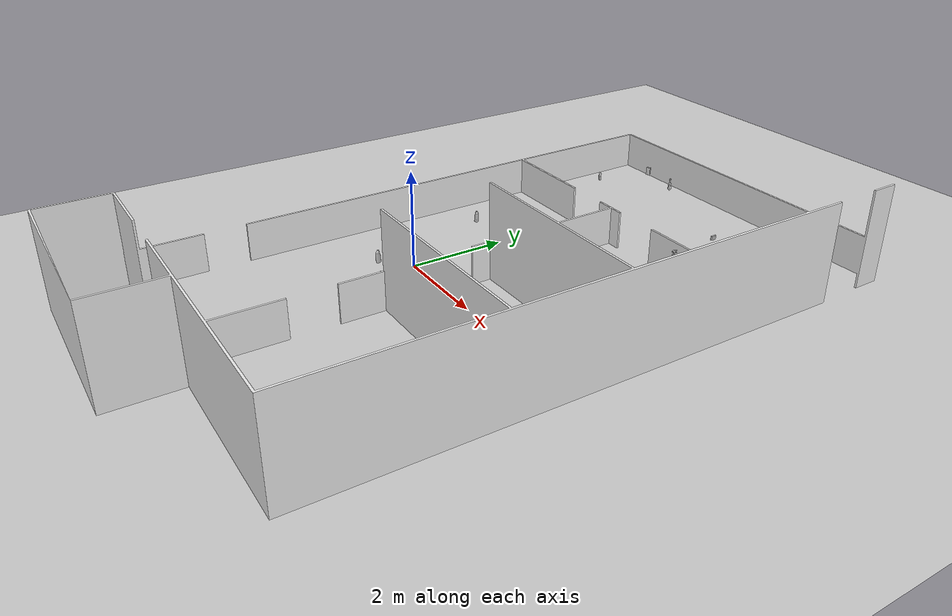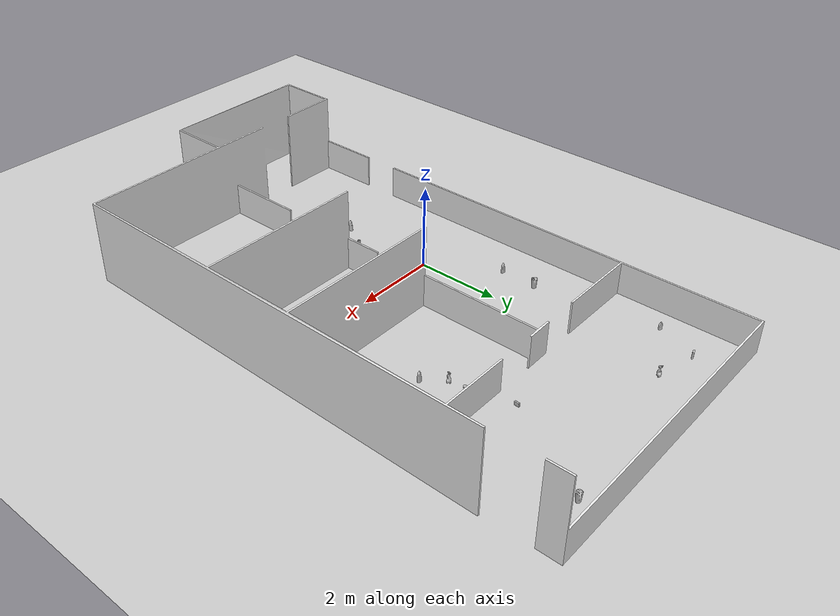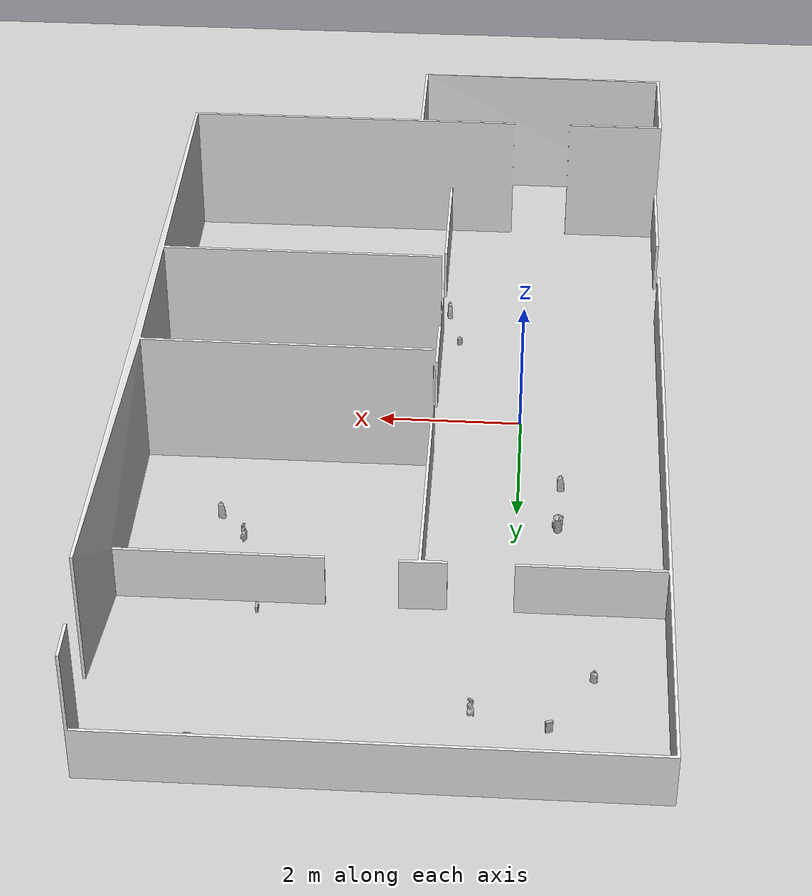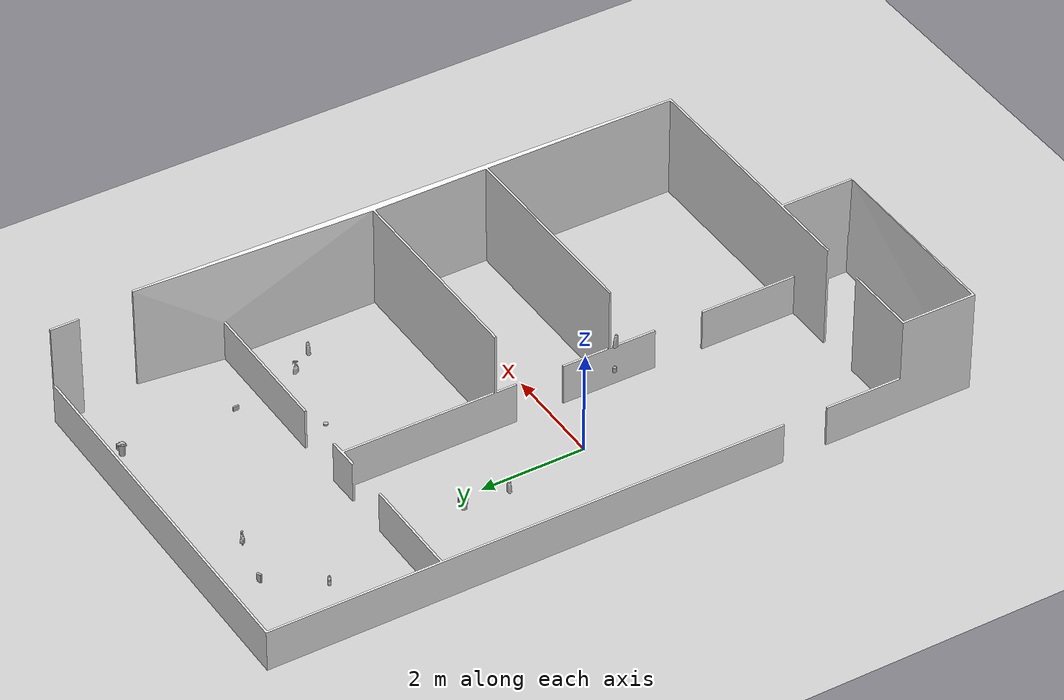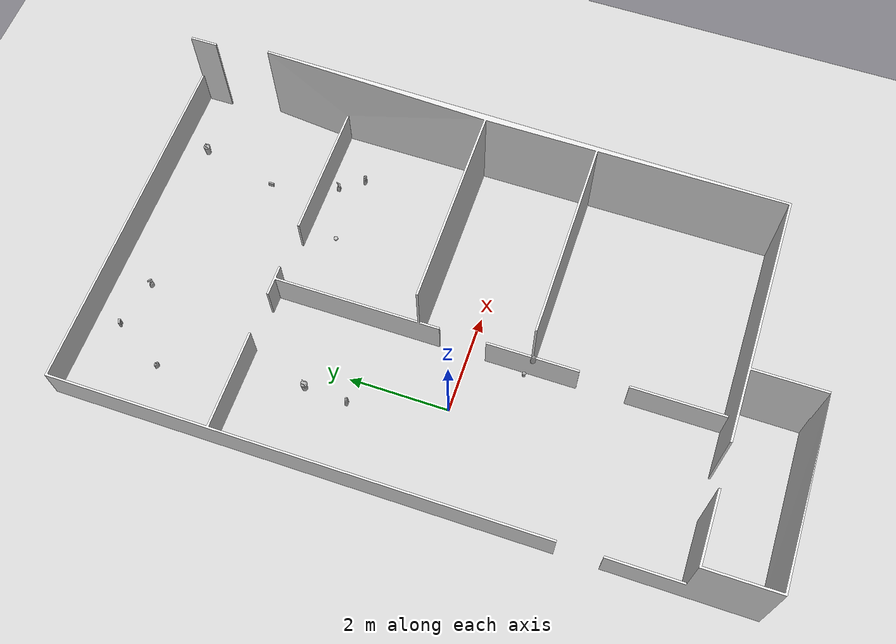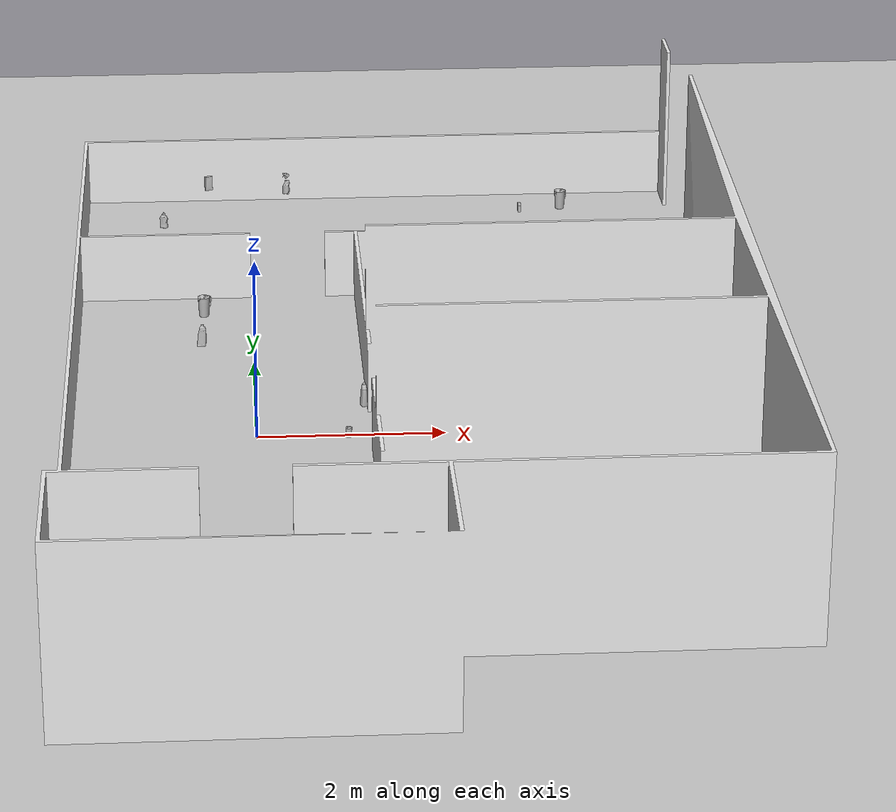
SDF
<sdf version="1.6">
 <world name="robocup">
  <physics name="default_physics" default="0" type="ode">
   <ode>
    <solver>
     <type>quick</type>
     <iters>20</iters>
     <sor>1</sor>
     <use_dynamic_moi_rescaling>0</use_dynamic_moi_rescaling>
    </solver>
    <constraints>
     <cfm>0</cfm>
     <erp>0.2</erp>
     <contact_max_correcting_vel>100</contact_max_correcting_vel>
     <contact_surface_layer>0</contact_surface_layer>
    </constraints>
   </ode>
   <real_time_update_rate>1000</real_time_update_rate>
   <max_step_size>0.001</max_step_size>
   <real_time_factor>1</real_time_factor>
  </physics>
  <light name="sun" type="directional">
   <pose>0 0 10 0 -0 0</pose>
   <diffuse>0.8 0.8 0.8 1</diffuse>
   <specular>0.1 0.1 0.1 1</specular>
   <attenuation>
    <range>1000</range>
    <constant>0.9</constant>
    <linear>0.01</linear>
    <quadratic>0.001</quadratic>
   </attenuation>
   <direction>-0.5 0.5 -1</direction>
  </light>
  <model name="ground_plane">
   <static>1</static>
   <link name="link">
    <collision name="collision">
     <geometry><plane><normal>0 0 1</normal><size>100 100</size></plane></geometry>
     <surface><friction><ode><mu>100</mu><mu2>50</mu2></ode></friction></surface>
    </collision>
    <visual name="visual">
     <cast_shadows>0</cast_shadows>
     <geometry><plane><normal>0 0 1</normal><size>100 100</size></plane></geometry>
     <material>
      <script><uri>file://media/materials/scripts/gazebo.material</uri><name>Gazebo/Grey</name></script>
     </material>
    </visual>
   </link>
  </model>
  <model name="housewalls1">
   <static>1</static>
   <link name="link">
    <collision name="colision1">
     <geometry>
      <mesh>
       <uri>model://robocup_walls_70cm_doors/meshes/robocup_house_large_doors_sas.stl</uri>
       <scale>1 1 1</scale>
      </mesh>
     </geometry>
    </collision>
    <visual name="visual1">
     <geometry>
      <mesh>
       <uri>model://robocup_walls_70cm_doors/meshes/robocup_house_large_doors_sas.stl</uri>
       <scale>1 1 1</scale>
      </mesh>
     </geometry>
     <material>
      <script><uri>file://media/materials/scripts/gazebo.material</uri><name>Gazebo/White</name></script>
     </material>
    </visual>
    <velocity_decay><linear>0</linear><angular>0</angular></velocity_decay>
   </link>
   <pose>-2 -5 0 0 -0 0</pose>
  </model>
  <model name="ycb-bleach">
   <link name="link_8">
    <inertial>
     <mass>1</mass>
     <inertia>
      <ixx>0.166667</ixx>
      <ixy>0</ixy>
      <ixz>0</ixz>
      <iyy>0.166667</iyy>
      <iyz>0</iyz>
      <izz>0.166667</izz>
     </inertia>
    </inertial>
    <visual name="visual">
     <geometry><mesh><uri>model://ycb-bleach/meshes/textured.dae</uri><scale>1 1 1</scale></mesh></geometry>
    </visual>
    <collision name="collision">
     <geometry><mesh><uri>/model://ycb-bleach/meshes/textured.dae</uri><scale>1 1 1</scale></mesh></geometry>
     <surface>
      <friction>
       <ode><mu>1</mu><mu2>1</mu2><fdir1>0 0 0</fdir1><slip1>0</slip1><slip2>0</slip2></ode>
       <torsional>
        <coefficient>1</coefficient>
        <patch_radius>0</patch_radius>
        <surface_radius>0</surface_radius>
        <use_patch_radius>1</use_patch_radius>
        <ode><slip>0</slip></ode>
       </torsional>
      </friction>
      <bounce><restitution_coefficient>0</restitution_coefficient><threshold>1e+06</threshold></bounce>
      <contact>
       <collide_without_contact>0</collide_without_contact>
       <collide_without_contact_bitmask>1</collide_without_contact_bitmask>
       <collide_bitmask>1</collide_bitmask>
       <ode>
        <soft_cfm>0</soft_cfm>
        <soft_erp>0.2</soft_erp>
        <kp>1e+13</kp>
        <kd>1</kd>
        <max_vel>0.01</max_vel>
        <min_depth>0</min_depth>
       </ode>
       <bullet>
        <split_impulse>1</split_impulse>
        <split_impulse_penetration_threshold>-0.01</split_impulse_penetration_threshold>
        <soft_cfm>0</soft_cfm>
        <soft_erp>0.2</soft_erp>
        <kp>1e+13</kp>
        <kd>1</kd>
       </bullet>
      </contact>
     </surface>
    </collision>
   </link>
   <static>1</static>
   <pose>3.88496 3.06068 0.660997 0 -0 0</pose>
  </model>
  <model name="ycb-mustard">
   <link name="link_2">
    <inertial>
     <mass>1</mass>
     <inertia>
      <ixx>0.166667</ixx>
      <ixy>0</ixy>
      <ixz>0</ixz>
      <iyy>0.166667</iyy>
      <iyz>0</iyz>
      <izz>0.166667</izz>
     </inertia>
    </inertial>
    <visual name="visual">
     <geometry><mesh><uri>model://ycb-mustard/meshes/textured.dae</uri><scale>1 1 1</scale></mesh></geometry>
    </visual>
    <collision name="collision">
     <geometry><mesh><uri>model://ycb-mustard/meshes/textured.dae</uri><scale>1 1 1</scale></mesh></geometry>
     <surface>
      <friction>
       <ode><mu>1</mu><mu2>1</mu2><fdir1>0 0 0</fdir1><slip1>0</slip1><slip2>0</slip2></ode>
       <torsional>
        <coefficient>1</coefficient>
        <patch_radius>0</patch_radius>
        <surface_radius>0</surface_radius>
        <use_patch_radius>1</use_patch_radius>
        <ode><slip>0</slip></ode>
       </torsional>
      </friction>
      <bounce><restitution_coefficient>0</restitution_coefficient><threshold>1e+06</threshold></bounce>
      <contact>
       <collide_without_contact>0</collide_without_contact>
       <collide_without_contact_bitmask>1</collide_without_contact_bitmask>
       <collide_bitmask>1</collide_bitmask>
       <ode>
        <soft_cfm>0</soft_cfm>
        <soft_erp>0.2</soft_erp>
        <kp>1e+13</kp>
        <kd>1</kd>
        <max_vel>0.01</max_vel>
        <min_depth>0</min_depth>
       </ode>
       <bullet>
        <split_impulse>1</split_impulse>
        <split_impulse_penetration_threshold>-0.01</split_impulse_penetration_threshold>
        <soft_cfm>0</soft_cfm>
        <soft_erp>0.2</soft_erp>
        <kp>1e+13</kp>
        <kd>1</kd>
       </bullet>
      </contact>
     </surface>
    </collision>
   </link>
   <static>1</static>
   <pose>-1.00422 5.50495 0.30154 0 -0 0</pose>
  </model>
  <model name="ycb-windex">
   <link name="link_9">
    <inertial>
     <mass>1</mass>
     <inertia>
      <ixx>0.166667</ixx>
      <ixy>0</ixy>
      <ixz>0</ixz>
      <iyy>0.166667</iyy>
      <iyz>0</iyz>
      <izz>0.166667</izz>
     </inertia>
    </inertial>
    <visual name="visual">
     <geometry><mesh><uri>model://ycb-windex/meshes/textured.dae</uri><scale>1 1 1</scale></mesh></geometry>
    </visual>
    <collision name="collision">
     <geometry><mesh><uri>model://ycb-windex/meshes/textured.dae</uri><scale>1 1 1</scale></mesh></geometry>
     <surface>
      <friction>
       <ode><mu>1</mu><mu2>1</mu2><fdir1>0 0 0</fdir1><slip1>0</slip1><slip2>0</slip2></ode>
       <torsional>
        <coefficient>1</coefficient>
        <patch_radius>0</patch_radius>
        <surface_radius>0</surface_radius>
        <use_patch_radius>1</use_patch_radius>
        <ode><slip>0</slip></ode>
       </torsional>
      </friction>
      <bounce><restitution_coefficient>0</restitution_coefficient><threshold>1e+06</threshold></bounce>
      <contact>
       <collide_without_contact>0</collide_without_contact>
       <collide_without_contact_bitmask>1</collide_without_contact_bitmask>
       <collide_bitmask>1</collide_bitmask>
       <ode>
        <soft_cfm>0</soft_cfm>
        <soft_erp>0.2</soft_erp>
        <kp>1e+13</kp>
        <kd>1</kd>
        <max_vel>0.01</max_vel>
        <min_depth>0</min_depth>
       </ode>
       <bullet>
        <split_impulse>1</split_impulse>
        <split_impulse_penetration_threshold>-0.01</split_impulse_penetration_threshold>
        <soft_cfm>0</soft_cfm>
        <soft_erp>0.2</soft_erp>
        <kp>1e+13</kp>
        <kd>1</kd>
       </bullet>
      </contact>
     </surface>
    </collision>
   </link>
   <static>1</static>
   <pose>3.51273 3.49556 0.656992 0 -0 0</pose>
  </model>
  <gravity>0 0 -9.81</gravity>
  <magnetic_field>6e-06 2.3e-05 -4.2e-05</magnetic_field>
  <atmosphere type="adiabatic"/>
  <scene><ambient>0.4 0.4 0.4 1</ambient><background>0.7 0.7 0.7 1</background><shadows>1</shadows></scene>
  <spherical_coordinates>
   <surface_model>EARTH_WGS84</surface_model>
   <latitude_deg>0</latitude_deg>
   <longitude_deg>0</longitude_deg>
   <elevation>0</elevation>
   <heading_deg>0</heading_deg>
  </spherical_coordinates>
  <model name="ycb-bleach_clone">
   <link name="link_8">
    <inertial>
     <mass>1</mass>
     <inertia>
      <ixx>0.166667</ixx>
      <ixy>0</ixy>
      <ixz>0</ixz>
      <iyy>0.166667</iyy>
      <iyz>0</iyz>
      <izz>0.166667</izz>
     </inertia>
    </inertial>
    <visual name="visual">
     <geometry><mesh><uri>model://ycb-bleach/meshes/textured.dae</uri><scale>1 1 1</scale></mesh></geometry>
    </visual>
    <collision name="collision">
     <geometry><mesh><uri>/model://ycb-bleach/meshes/textured.dae</uri><scale>1 1 1</scale></mesh></geometry>
     <surface>
      <friction>
       <ode><mu>1</mu><mu2>1</mu2><fdir1>0 0 0</fdir1><slip1>0</slip1><slip2>0</slip2></ode>
       <torsional>
        <coefficient>1</coefficient>
        <patch_radius>0</patch_radius>
        <surface_radius>0</surface_radius>
        <use_patch_radius>1</use_patch_radius>
        <ode><slip>0</slip></ode>
       </torsional>
      </friction>
      <bounce><restitution_coefficient>0</restitution_coefficient><threshold>1e+06</threshold></bounce>
      <contact>
       <collide_without_contact>0</collide_without_contact>
       <collide_without_contact_bitmask>1</collide_without_contact_bitmask>
       <collide_bitmask>1</collide_bitmask>
       <ode>
        <soft_cfm>0</soft_cfm>
        <soft_erp>0.2</soft_erp>
        <kp>1e+13</kp>
        <kd>1</kd>
        <max_vel>0.01</max_vel>
        <min_depth>0</min_depth>
       </ode>
       <bullet>
        <split_impulse>1</split_impulse>
        <split_impulse_penetration_threshold>-0.01</split_impulse_penetration_threshold>
        <soft_cfm>0</soft_cfm>
        <soft_erp>0.2</soft_erp>
        <kp>1e+13</kp>
        <kd>1</kd>
       </bullet>
      </contact>
     </surface>
    </collision>
   </link>
   <static>1</static>
   <pose>1.06873 -1.30415 0.919867 0 0 -1.27968</pose>
  </model>
  <model name="ycb-bleach_clone_0">
   <link name="link_8">
    <inertial>
     <mass>1</mass>
     <inertia>
      <ixx>0.166667</ixx>
      <ixy>0</ixy>
      <ixz>0</ixz>
      <iyy>0.166667</iyy>
      <iyz>0</iyz>
      <izz>0.166667</izz>
     </inertia>
    </inertial>
    <visual name="visual">
     <geometry><mesh><uri>model://ycb-bleach/meshes/textured.dae</uri><scale>1 1 1</scale></mesh></geometry>
    </visual>
    <collision name="collision">
     <geometry><mesh><uri>/model://ycb-bleach/meshes/textured.dae</uri><scale>1 1 1</scale></mesh></geometry>
     <surface>
      <friction>
       <ode><mu>1</mu><mu2>1</mu2><fdir1>0 0 0</fdir1><slip1>0</slip1><slip2>0</slip2></ode>
       <torsional>
        <coefficient>1</coefficient>
        <patch_radius>0</patch_radius>
        <surface_radius>0</surface_radius>
        <use_patch_radius>1</use_patch_radius>
        <ode><slip>0</slip></ode>
       </torsional>
      </friction>
      <bounce><restitution_coefficient>0</restitution_coefficient><threshold>1e+06</threshold></bounce>
      <contact>
       <collide_without_contact>0</collide_without_contact>
       <collide_without_contact_bitmask>1</collide_without_contact_bitmask>
       <collide_bitmask>1</collide_bitmask>
       <ode>
        <soft_cfm>0</soft_cfm>
        <soft_erp>0.2</soft_erp>
        <kp>1e+13</kp>
        <kd>1</kd>
        <max_vel>0.01</max_vel>
        <min_depth>0</min_depth>
       </ode>
       <bullet>
        <split_impulse>1</split_impulse>
        <split_impulse_penetration_threshold>-0.01</split_impulse_penetration_threshold>
        <soft_cfm>0</soft_cfm>
        <soft_erp>0.2</soft_erp>
        <kp>1e+13</kp>
        <kd>1</kd>
       </bullet>
      </contact>
     </surface>
    </collision>
   </link>
   <static>1</static>
   <pose>-0.555923 1.80067 0.304285 0 -0 0</pose>
  </model>
  <model name="ycb-pudding">
   <link name="link_4">
    <inertial>
     <mass>1</mass>
     <inertia>
      <ixx>0.166667</ixx>
      <ixy>0</ixy>
      <ixz>0</ixz>
      <iyy>0.166667</iyy>
      <iyz>0</iyz>
      <izz>0.166667</izz>
     </inertia>
    </inertial>
    <visual name="visual">
     <geometry><mesh><uri>model://ycb-pudding/meshes/textured.dae</uri><scale>1 1 1</scale></mesh></geometry>
    </visual>
    <collision name="collision">
     <geometry><mesh><uri>model://ycb-pudding/meshes/textured.dae</uri><scale>1 1 1</scale></mesh></geometry>
     <surface>
      <friction>
       <ode><mu>1</mu><mu2>1</mu2><fdir1>0 0 0</fdir1><slip1>0</slip1><slip2>0</slip2></ode>
       <torsional>
        <coefficient>1</coefficient>
        <patch_radius>0</patch_radius>
        <surface_radius>0</surface_radius>
        <use_patch_radius>1</use_patch_radius>
        <ode><slip>0</slip></ode>
       </torsional>
      </friction>
      <bounce><restitution_coefficient>0</restitution_coefficient><threshold>1e+06</threshold></bounce>
      <contact>
       <collide_without_contact>0</collide_without_contact>
       <collide_without_contact_bitmask>1</collide_without_contact_bitmask>
       <collide_bitmask>1</collide_bitmask>
       <ode>
        <soft_cfm>0</soft_cfm>
        <soft_erp>0.2</soft_erp>
        <kp>1e+13</kp>
        <kd>1</kd>
        <max_vel>0.01</max_vel>
        <min_depth>0</min_depth>
       </ode>
       <bullet>
        <split_impulse>1</split_impulse>
        <split_impulse_penetration_threshold>-0.01</split_impulse_penetration_threshold>
        <soft_cfm>0</soft_cfm>
        <soft_erp>0.2</soft_erp>
        <kp>1e+13</kp>
        <kd>1</kd>
       </bullet>
      </contact>
     </surface>
    </collision>
   </link>
   <static>1</static>
   <pose>3.22749 4.846 0.688183 1.54328 0.480614 -1.54924</pose>
  </model>
  <model name="ycb-pitcher">
   <link name="link_7">
    <inertial>
     <mass>1</mass>
     <inertia>
      <ixx>0.166667</ixx>
      <ixy>0</ixy>
      <ixz>0</ixz>
      <iyy>0.166667</iyy>
      <iyz>0</iyz>
      <izz>0.166667</izz>
     </inertia>
    </inertial>
    <visual name="visual">
     <geometry><mesh><uri>model://ycb-pitcher/meshes/textured.dae</uri><scale>1 1 1</scale></mesh></geometry>
    </visual>
    <collision name="collision">
     <geometry><mesh><uri>model://ycb-pitcher/meshes/textured.dae</uri><scale>1 1 1</scale></mesh></geometry>
     <surface>
      <friction>
       <ode><mu>1</mu><mu2>1</mu2><fdir1>0 0 0</fdir1><slip1>0</slip1><slip2>0</slip2></ode>
       <torsional>
        <coefficient>1</coefficient>
        <patch_radius>0</patch_radius>
        <surface_radius>0</surface_radius>
        <use_patch_radius>1</use_patch_radius>
        <ode><slip>0</slip></ode>
       </torsional>
      </friction>
      <bounce><restitution_coefficient>0</restitution_coefficient><threshold>1e+06</threshold></bounce>
      <contact>
       <collide_without_contact>0</collide_without_contact>
       <collide_without_contact_bitmask>1</collide_without_contact_bitmask>
       <collide_bitmask>1</collide_bitmask>
       <ode>
        <soft_cfm>0</soft_cfm>
        <soft_erp>0.2</soft_erp>
        <kp>1e+13</kp>
        <kd>1</kd>
        <max_vel>0.01</max_vel>
        <min_depth>0</min_depth>
       </ode>
       <bullet>
        <split_impulse>1</split_impulse>
        <split_impulse_penetration_threshold>-0.01</split_impulse_penetration_threshold>
        <soft_cfm>0</soft_cfm>
        <soft_erp>0.2</soft_erp>
        <kp>1e+13</kp>
        <kd>1</kd>
       </bullet>
      </contact>
     </surface>
    </collision>
   </link>
   <static>1</static>
   <pose>3.89705 6.61011 0 0 -0 0</pose>
  </model>
  <model name="ycb-pitcher_0">
   <link name="link_7">
    <inertial>
     <mass>1</mass>
     <inertia>
      <ixx>0.166667</ixx>
      <ixy>0</ixy>
      <ixz>0</ixz>
      <iyy>0.166667</iyy>
      <iyz>0</iyz>
      <izz>0.166667</izz>
     </inertia>
    </inertial>
    <visual name="visual">
     <geometry><mesh><uri>model://ycb-pitcher/meshes/textured.dae</uri><scale>1 1 1</scale></mesh></geometry>
    </visual>
    <collision name="collision">
     <geometry><mesh><uri>model://ycb-pitcher/meshes/textured.dae</uri><scale>1 1 1</scale></mesh></geometry>
     <surface>
      <friction>
       <ode><mu>1</mu><mu2>1</mu2><fdir1>0 0 0</fdir1><slip1>0</slip1><slip2>0</slip2></ode>
       <torsional>
        <coefficient>1</coefficient>
        <patch_radius>0</patch_radius>
        <surface_radius>0</surface_radius>
        <use_patch_radius>1</use_patch_radius>
        <ode><slip>0</slip></ode>
       </torsional>
      </friction>
      <bounce><restitution_coefficient>0</restitution_coefficient><threshold>1e+06</threshold></bounce>
      <contact>
       <collide_without_contact>0</collide_without_contact>
       <collide_without_contact_bitmask>1</collide_without_contact_bitmask>
       <collide_bitmask>1</collide_bitmask>
       <ode>
        <soft_cfm>0</soft_cfm>
        <soft_erp>0.2</soft_erp>
        <kp>1e+13</kp>
        <kd>1</kd>
        <max_vel>0.01</max_vel>
        <min_depth>0</min_depth>
       </ode>
       <bullet>
        <split_impulse>1</split_impulse>
        <split_impulse_penetration_threshold>-0.01</split_impulse_penetration_threshold>
        <soft_cfm>0</soft_cfm>
        <soft_erp>0.2</soft_erp>
        <kp>1e+13</kp>
        <kd>1</kd>
       </bullet>
      </contact>
     </surface>
    </collision>
   </link>
   <static>1</static>
   <pose>-0.53333 2.63182 0.303831 0 -0 0</pose>
  </model>
  <model name="ycb-tuna">
   <link name="link_3">
    <inertial>
     <mass>1</mass>
     <inertia>
      <ixx>0.166667</ixx>
      <ixy>0</ixy>
      <ixz>0</ixz>
      <iyy>0.166667</iyy>
      <iyz>0</iyz>
      <izz>0.166667</izz>
     </inertia>
    </inertial>
    <visual name="visual">
     <geometry><mesh><uri>model://ycb-tuna/meshes/textured.dae</uri><scale>1 1 1</scale></mesh></geometry>
    </visual>
    <collision name="collision">
     <geometry><mesh><uri>model://ycb-tuna/meshes/textured.dae</uri><scale>1 1 1</scale></mesh></geometry>
     <surface>
      <friction>
       <ode><mu>1</mu><mu2>1</mu2><fdir1>0 0 0</fdir1><slip1>0</slip1><slip2>0</slip2></ode>
       <torsional>
        <coefficient>1</coefficient>
        <patch_radius>0</patch_radius>
        <surface_radius>0</surface_radius>
        <use_patch_radius>1</use_patch_radius>
        <ode><slip>0</slip></ode>
       </torsional>
      </friction>
      <bounce><restitution_coefficient>0</restitution_coefficient><threshold>1e+06</threshold></bounce>
      <contact>
       <collide_without_contact>0</collide_without_contact>
       <collide_without_contact_bitmask>1</collide_without_contact_bitmask>
       <collide_bitmask>1</collide_bitmask>
       <ode>
        <soft_cfm>0</soft_cfm>
        <soft_erp>0.2</soft_erp>
        <kp>1e+13</kp>
        <kd>1</kd>
        <max_vel>0.01</max_vel>
        <min_depth>0</min_depth>
       </ode>
       <bullet>
        <split_impulse>1</split_impulse>
        <split_impulse_penetration_threshold>-0.01</split_impulse_penetration_threshold>
        <soft_cfm>0</soft_cfm>
        <soft_erp>0.2</soft_erp>
        <kp>1e+13</kp>
        <kd>1</kd>
       </bullet>
      </contact>
     </surface>
    </collision>
   </link>
   <static>1</static>
   <pose>2.82333 3.3837 0 0 -0 0</pose>
  </model>
  <model name="ycb-windex_0">
   <link name="link_9">
    <inertial>
     <mass>1</mass>
     <inertia>
      <ixx>0.166667</ixx>
      <ixy>0</ixy>
      <ixz>0</ixz>
      <iyy>0.166667</iyy>
      <iyz>0</iyz>
      <izz>0.166667</izz>
     </inertia>
    </inertial>
    <visual name="visual">
     <geometry><mesh><uri>model://ycb-windex/meshes/textured.dae</uri><scale>1 1 1</scale></mesh></geometry>
    </visual>
    <collision name="collision">
     <geometry><mesh><uri>model://ycb-windex/meshes/textured.dae</uri><scale>1 1 1</scale></mesh></geometry>
     <surface>
      <friction>
       <ode><mu>1</mu><mu2>1</mu2><fdir1>0 0 0</fdir1><slip1>0</slip1><slip2>0</slip2></ode>
       <torsional>
        <coefficient>1</coefficient>
        <patch_radius>0</patch_radius>
        <surface_radius>0</surface_radius>
        <use_patch_radius>1</use_patch_radius>
        <ode><slip>0</slip></ode>
       </torsional>
      </friction>
      <bounce><restitution_coefficient>0</restitution_coefficient><threshold>1e+06</threshold></bounce>
      <contact>
       <collide_without_contact>0</collide_without_contact>
       <collide_without_contact_bitmask>1</collide_without_contact_bitmask>
       <collide_bitmask>1</collide_bitmask>
       <ode>
        <soft_cfm>0</soft_cfm>
        <soft_erp>0.2</soft_erp>
        <kp>1e+13</kp>
        <kd>1</kd>
        <max_vel>0.01</max_vel>
        <min_depth>0</min_depth>
       </ode>
       <bullet>
        <split_impulse>1</split_impulse>
        <split_impulse_penetration_threshold>-0.01</split_impulse_penetration_threshold>
        <soft_cfm>0</soft_cfm>
        <soft_erp>0.2</soft_erp>
        <kp>1e+13</kp>
        <kd>1</kd>
       </bullet>
      </contact>
     </surface>
    </collision>
   </link>
   <static>1</static>
   <pose>0.478193 6.23429 0.402943 0 -0 1.15948</pose>
  </model>
  <model name="ycb-sugar">
   <link name="link_0">
    <inertial>
     <mass>1</mass>
     <inertia>
      <ixx>0.166667</ixx>
      <ixy>0</ixy>
      <ixz>0</ixz>
      <iyy>0.166667</iyy>
      <iyz>0</iyz>
      <izz>0.166667</izz>
     </inertia>
    </inertial>
    <visual name="visual">
     <geometry><mesh><uri>model://ycb-sugar/meshes/textured.dae</uri><scale>1 1 1</scale></mesh></geometry>
    </visual>
    <collision name="collision">
     <geometry><mesh><uri>model://ycb-sugar/meshes/textured.dae</uri><scale>1 1 1</scale></mesh></geometry>
     <surface>
      <friction>
       <ode><mu>1</mu><mu2>1</mu2><fdir1>0 0 0</fdir1><slip1>0</slip1><slip2>0</slip2></ode>
       <torsional>
        <coefficient>1</coefficient>
        <patch_radius>0</patch_radius>
        <surface_radius>0</surface_radius>
        <use_patch_radius>1</use_patch_radius>
        <ode><slip>0</slip></ode>
       </torsional>
      </friction>
      <bounce><restitution_coefficient>0</restitution_coefficient><threshold>1e+06</threshold></bounce>
      <contact>
       <collide_without_contact>0</collide_without_contact>
       <collide_without_contact_bitmask>1</collide_without_contact_bitmask>
       <collide_bitmask>1</collide_bitmask>
       <ode>
        <soft_cfm>0</soft_cfm>
        <soft_erp>0.2</soft_erp>
        <kp>1e+13</kp>
        <kd>1</kd>
        <max_vel>0.01</max_vel>
        <min_depth>0</min_depth>
       </ode>
       <bullet>
        <split_impulse>1</split_impulse>
        <split_impulse_penetration_threshold>-0.01</split_impulse_penetration_threshold>
        <soft_cfm>0</soft_cfm>
        <soft_erp>0.2</soft_erp>
        <kp>1e+13</kp>
        <kd>1</kd>
       </bullet>
      </contact>
     </surface>
    </collision>
   </link>
   <static>1</static>
   <pose>-0.45635 6.47018 0.400011 0 0 -1.18382</pose>
  </model>
  <model name="ycb-tomatosoup">
   <link name="link_1">
    <inertial>
     <mass>1</mass>
     <inertia>
      <ixx>0.166667</ixx>
      <ixy>0</ixy>
      <ixz>0</ixz>
      <iyy>0.166667</iyy>
      <iyz>0</iyz>
      <izz>0.166667</izz>
     </inertia>
    </inertial>
    <visual name="visual">
     <geometry><mesh><uri>model://ycb-tomatosoup/meshes/textured.dae</uri><scale>1 1 1</scale></mesh></geometry>
    </visual>
    <collision name="collision">
     <geometry><mesh><uri>model://ycb-tomatosoup/meshes/textured.dae</uri><scale>1 1 1</scale></mesh></geometry>
     <surface>
      <friction>
       <ode><mu>1</mu><mu2>1</mu2><fdir1>0 0 0</fdir1><slip1>0</slip1><slip2>0</slip2></ode>
       <torsional>
        <coefficient>1</coefficient>
        <patch_radius>0</patch_radius>
        <surface_radius>0</surface_radius>
        <use_patch_radius>1</use_patch_radius>
        <ode><slip>0</slip></ode>
       </torsional>
      </friction>
      <bounce><restitution_coefficient>0</restitution_coefficient><threshold>1e+06</threshold></bounce>
      <contact>
       <collide_without_contact>0</collide_without_contact>
       <collide_without_contact_bitmask>1</collide_without_contact_bitmask>
       <collide_bitmask>1</collide_bitmask>
       <ode>
        <soft_cfm>0</soft_cfm>
        <soft_erp>0.2</soft_erp>
        <kp>1e+13</kp>
        <kd>1</kd>
        <max_vel>0.01</max_vel>
        <min_depth>0</min_depth>
       </ode>
       <bullet>
        <split_impulse>1</split_impulse>
        <split_impulse_penetration_threshold>-0.01</split_impulse_penetration_threshold>
        <soft_cfm>0</soft_cfm>
        <soft_erp>0.2</soft_erp>
        <kp>1e+13</kp>
        <kd>1</kd>
       </bullet>
      </contact>
     </surface>
    </collision>
   </link>
   <static>1</static>
   <pose>1.00654 -1.16353 0.522383 0 -0 1.54181</pose>
  </model>
 </world>
</sdf>
